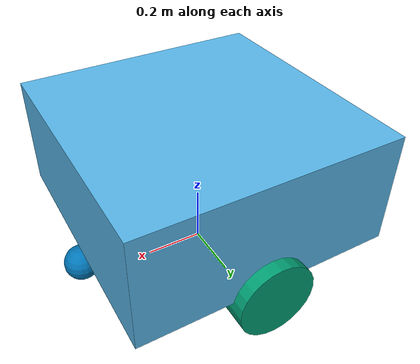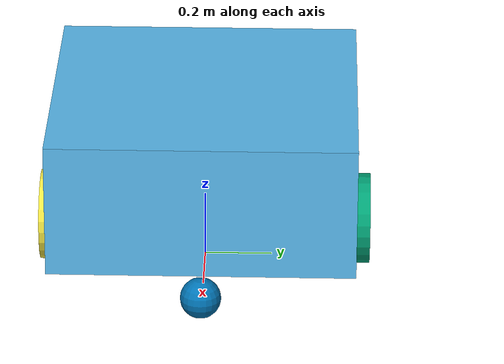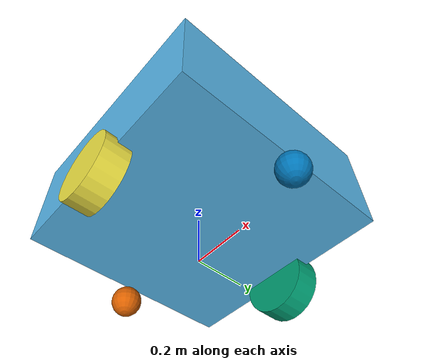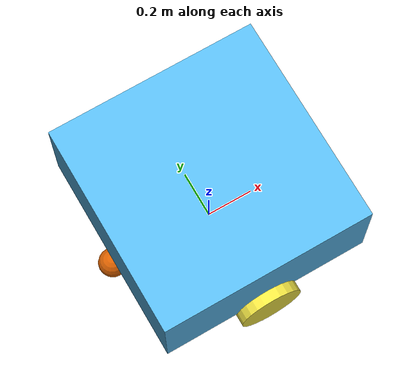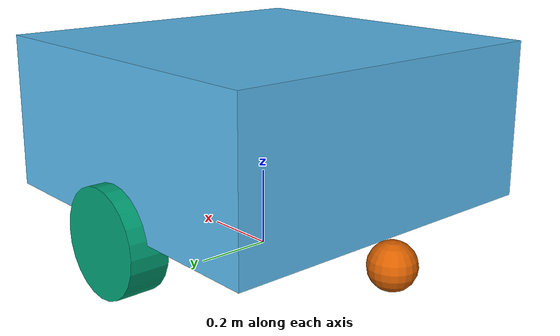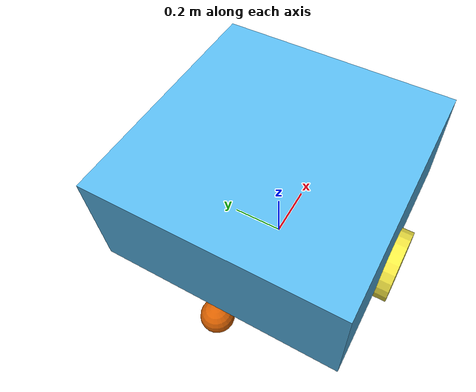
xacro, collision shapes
<?xml version="1.0"?>
<robot name="knavi_robot" xmlns:xacro="http://www.ros.org/wiki/xacro">

  <!-- 네임스페이스: 로봇마다 다르게 주입(launch 에서 ns:=robotN 전달). gz 토픽을 /robotN/... 으로 분리.
       같은 모델 여러 대여도 URDF 파일은 이 하나로 충분(인자만 바꿔 넘김). -->
  <xacro:arg name="ns" default="robot1"/>

  <!-- ===== 외형 메시 (OGV) ===== -->
  <!-- model:// 참조 → gz 가 GZ_SIM_RESOURCE_PATH(launch 에서 models 폴더 등록)로 해석.
       절대경로 하드코딩 제거 → 팀원 누구 경로에서도 동작.
       (rsp 는 메시를 로드 안 하고 tf 만 계산하므로 model:// 여도 무방) -->
  <xacro:property name="ogv_mesh" value="model://OGV/meshes/ogv.dae"/>
  <xacro:property name="ogv_scale" value="6 6 6"/>
  <!-- OGV 정면이 메시 +Y → ROS 전진(+X)에 맞추려 yaw -90° 회전 -->
  <xacro:property name="mesh_yaw" value="-1.5708"/>

  <!-- ===== 구동 파라미터 (실측) ===== -->
  <xacro:property name="wheel_radius" value="0.135"/>
  <xacro:property name="wheel_width"  value="0.10"/>
  <xacro:property name="wheel_sep"    value="0.89"/>   <!-- 좌우 구동바퀴 중심 간 거리 -->
  <xacro:property name="caster_radius" value="0.06"/>
  <xacro:property name="caster_x"      value="0.45"/>  <!-- 앞/뒤 캐스터 위치 -->

  <xacro:property name="base_mass"   value="20.0"/>
  <xacro:property name="wheel_mass"  value="1.0"/>

  <!-- ===== 관성 매크로 ===== -->
  <xacro:macro name="box_inertia" params="m x y z">
    <inertial>
      <mass value="${m}"/>
      <inertia ixx="${m*(y*y+z*z)/12.0}" ixy="0" ixz="0"
               iyy="${m*(x*x+z*z)/12.0}" iyz="0"
               izz="${m*(x*x+y*y)/12.0}"/>
    </inertial>
  </xacro:macro>
  <xacro:macro name="cyl_inertia" params="m r l">
    <inertial>
      <mass value="${m}"/>
      <inertia ixx="${m*(3*r*r+l*l)/12.0}" ixy="0" ixz="0"
               iyy="${m*(3*r*r+l*l)/12.0}" iyz="0"
               izz="${m*r*r/2.0}"/>
    </inertial>
  </xacro:macro>
  <xacro:macro name="sphere_inertia" params="m r">
    <inertial>
      <mass value="${m}"/>
      <inertia ixx="${2*m*r*r/5.0}" ixy="0" ixz="0"
               iyy="${2*m*r*r/5.0}" iyz="0" izz="${2*m*r*r/5.0}"/>
    </inertial>
  </xacro:macro>

  <link name="base_link"/>

  <joint name="base_to_chassis_joint" type="fixed">
    <parent link="base_link"/>
    <child  link="chassis"/>
    <origin xyz="0 0 0" rpy="0 0 0"/>
  </joint>

  <!-- ===== chassis (지면 기준, 원점 z=0) ===== -->
  <link name="chassis">
    <!-- 외형: OGV 메시 (시각 전용, 충돌엔 안 씀) -->
    <visual>
      <origin xyz="0 0 0" rpy="0 0 ${mesh_yaw}"/>
      <geometry>
        <mesh filename="${ogv_mesh}" scale="${ogv_scale}"/>
      </geometry>
    </visual>
    <!-- 충돌: 차체 근사 박스(바퀴 접지 위쪽에 띄워 바닥에 안 끌리게) -->
    <collision>
      <origin xyz="0 0 0.35" rpy="0 0 0"/>
      <geometry><box size="0.9 0.9 0.4"/></geometry>
    </collision>
    <xacro:box_inertia m="${base_mass}" x="0.9" y="0.9" z="0.4"/>
  </link>

  <!-- ===== 구동 바퀴 매크로 (충돌·관성만; 외형은 OGV 메시가 대신) ===== -->
  <xacro:macro name="drive_wheel" params="prefix side_y">
    <link name="${prefix}_wheel">
      <collision>
        <origin xyz="0 0 0" rpy="1.5708 0 0"/>
        <geometry><cylinder radius="${wheel_radius}" length="${wheel_width}"/></geometry>
      </collision>
      <xacro:cyl_inertia m="${wheel_mass}" r="${wheel_radius}" l="${wheel_width}"/>
    </link>
    <gazebo reference="${prefix}_wheel">
      <collision>
        <surface>
          <friction>
            <ode>
              <mu>1.0</mu>
              <mu2>1.0</mu2>
            </ode>
          </friction>
        </surface>
      </collision>
    </gazebo>
    <joint name="${prefix}_wheel_joint" type="continuous">
      <parent link="chassis"/>
      <child  link="${prefix}_wheel"/>
      <!-- 좌우로 벌리고, 바닥 접점이 z=0 이 되도록 중심을 wheel_radius 높이에.
           접지가 정확히 tangent(겹침 0)라 접촉이 불안정해 미끄러지는 문제가 있어
           1cm 겹치게 살짝 낮춤(wheel_radius - 0.01) → 안정적인 접촉/마찰 확보. -->
      <origin xyz="0 ${side_y} ${wheel_radius - 0.01}" rpy="0 0 0"/>
      <axis xyz="0 1 0"/>
    </joint>
  </xacro:macro>
  <xacro:drive_wheel prefix="left"  side_y="${ wheel_sep/2}"/>
  <xacro:drive_wheel prefix="right" side_y="${-wheel_sep/2}"/>

  <!-- ===== 캐스터 매크로 (앞/뒤 지지, 마찰 0) ===== -->
  <xacro:macro name="caster" params="prefix px">
    <link name="${prefix}_caster">
      <collision>
        <geometry><sphere radius="${caster_radius}"/></geometry>
      </collision>
      <xacro:sphere_inertia m="0.5" r="${caster_radius}"/>
    </link>
    <joint name="${prefix}_caster_joint" type="fixed">
      <parent link="chassis"/>
      <child  link="${prefix}_caster"/>
      <origin xyz="${px} 0 ${caster_radius + 0.02}" rpy="0 0 0"/>
    </joint>
    <gazebo reference="${prefix}_caster">
      <mu1>0.0</mu1><mu2>0.0</mu2>
    </gazebo>
  </xacro:macro>
  <xacro:caster prefix="front" px="${ caster_x}"/>
  <xacro:caster prefix="back"  px="${-caster_x}"/>

  <!-- ===== 시뮬 카메라 링크 (P1 대비 정의만) ===== -->
  <link name="camera_link">
    <xacro:box_inertia m="0.05" x="0.02" y="0.06" z="0.02"/>
  </link>
  <joint name="camera_joint" type="fixed">
    <parent link="chassis"/>
    <child  link="camera_link"/>
    <origin xyz="0.5 0 0.5" rpy="0 0 0"/>
  </joint>

  <link name="lidar_link">
    <xacro:box_inertia m="0.1" x="0.06" y="0.06" z="0.06"/>
  </link>
  <joint name="lidar_joint" type="fixed">
    <parent link="base_link"/>
    <child  link="lidar_link"/>
    <origin xyz="0 0 0.65" rpy="0 0 0"/>
  </joint>

  <!-- ================= Gazebo (gz-sim / Harmonic) ================= -->
  <gazebo>
    <plugin filename="gz-sim-diff-drive-system" name="gz::sim::systems::DiffDrive">
      <left_joint>left_wheel_joint</left_joint>
      <right_joint>right_wheel_joint</right_joint>
      <wheel_separation>${wheel_sep}</wheel_separation>
      <wheel_radius>${wheel_radius}</wheel_radius>
      <odom_publish_frequency>30</odom_publish_frequency>
      <max_linear_acceleration>1.0</max_linear_acceleration>
      <topic>$(arg ns)/cmd_vel</topic>
      <odom_topic>$(arg ns)/odom</odom_topic>
      <frame_id>odom</frame_id>
      <child_frame_id>base_link</child_frame_id>
      <tf_topic>$(arg ns)/tf</tf_topic>
    </plugin>
    <plugin filename="gz-sim-joint-state-publisher-system"
            name="gz::sim::systems::JointStatePublisher">
      <topic>$(arg ns)/joint_states</topic>
    </plugin>
  </gazebo>

  <gazebo reference="camera_link">
    <sensor name="sim_camera" type="camera">
      <always_on>1</always_on>
      <update_rate>15</update_rate>
      <!-- ns 를 붙여 로봇이 여러 대여도 토픽이 안 겹치게. bridge.yaml 과 이름이 일치해야 한다. -->
      <topic>$(arg ns)/camera/image</topic>
      <gz_frame_id>camera_link</gz_frame_id>
      <camera>
        <horizontal_fov>1.047</horizontal_fov>
        <image><width>640</width><height>480</height></image>
        <clip><near>0.1</near><far>100.0</far></clip>
      </camera>
    </sensor>
  </gazebo>

  <!-- LiDAR 센서 정의.
       gz_frame_id 를 반드시 넣는다: 없으면 ROS 로 넘어온 LaserScan 의 frame_id 가
       "knavi_robot/lidar_link/lidar" 같은 gz 내부 스코프 이름이 되어, Nav2 가 tf 조회에 실패한다. -->
  <gazebo reference="lidar_link">
    <sensor name="lidar" type="gpu_lidar">
      <always_on>1</always_on>
      <update_rate>10</update_rate>
      <visualize>true</visualize>
      <topic>$(arg ns)/scan</topic>
      <gz_frame_id>lidar_link</gz_frame_id>
      <lidar>
        <scan>
          <horizontal>
            <samples>720</samples>          <!-- 360°/720 = 0.5° 해상도 -->
            <resolution>1</resolution>
            <min_angle>-3.14159</min_angle>
            <max_angle>3.14159</max_angle>
          </horizontal>
        </scan>
        <range>
          <min>0.3</min>                    <!-- 차체 자기 반사 배제 -->
          <max>20.0</max>                   <!-- slam_toolbox max_laser_range 와 맞춤 -->
          <resolution>0.01</resolution>
        </range>
        <noise>
          <type>gaussian</type>
          <mean>0.0</mean>
          <stddev>0.01</stddev>
        </noise>
      </lidar>
    </sensor>
  </gazebo>

</robot>
